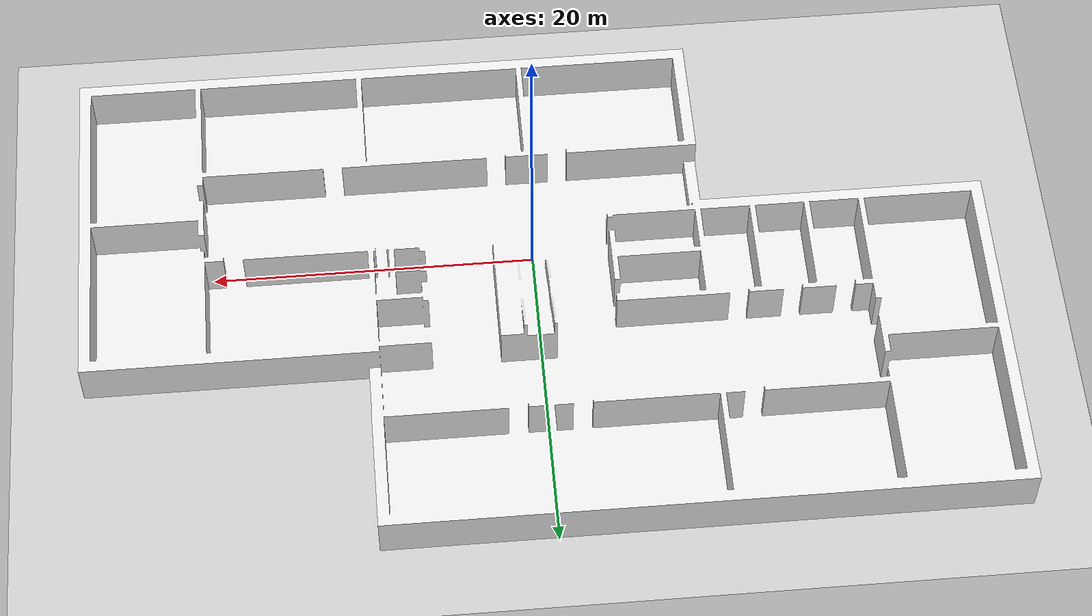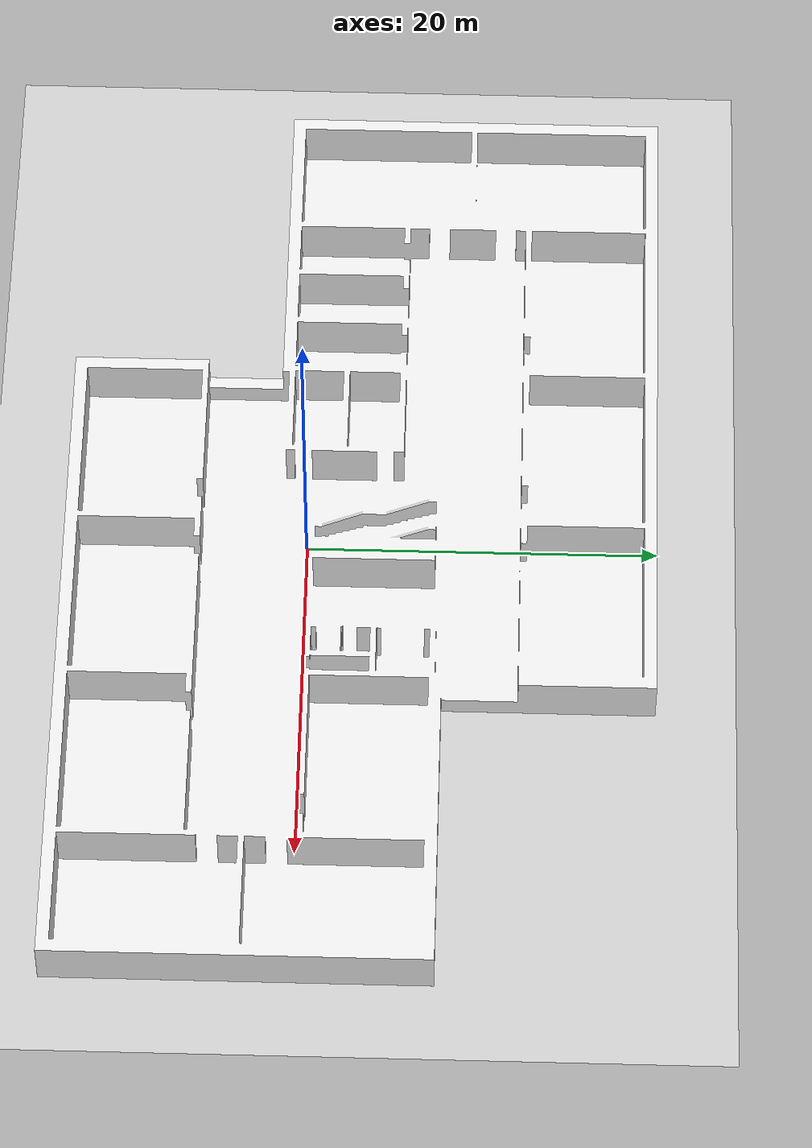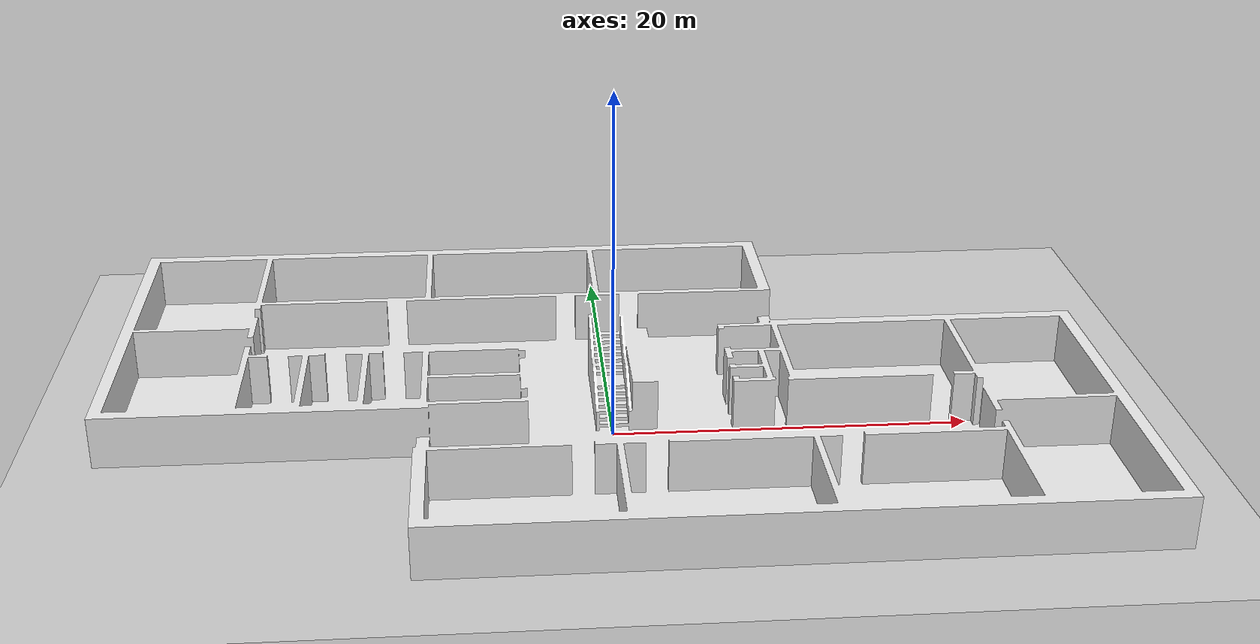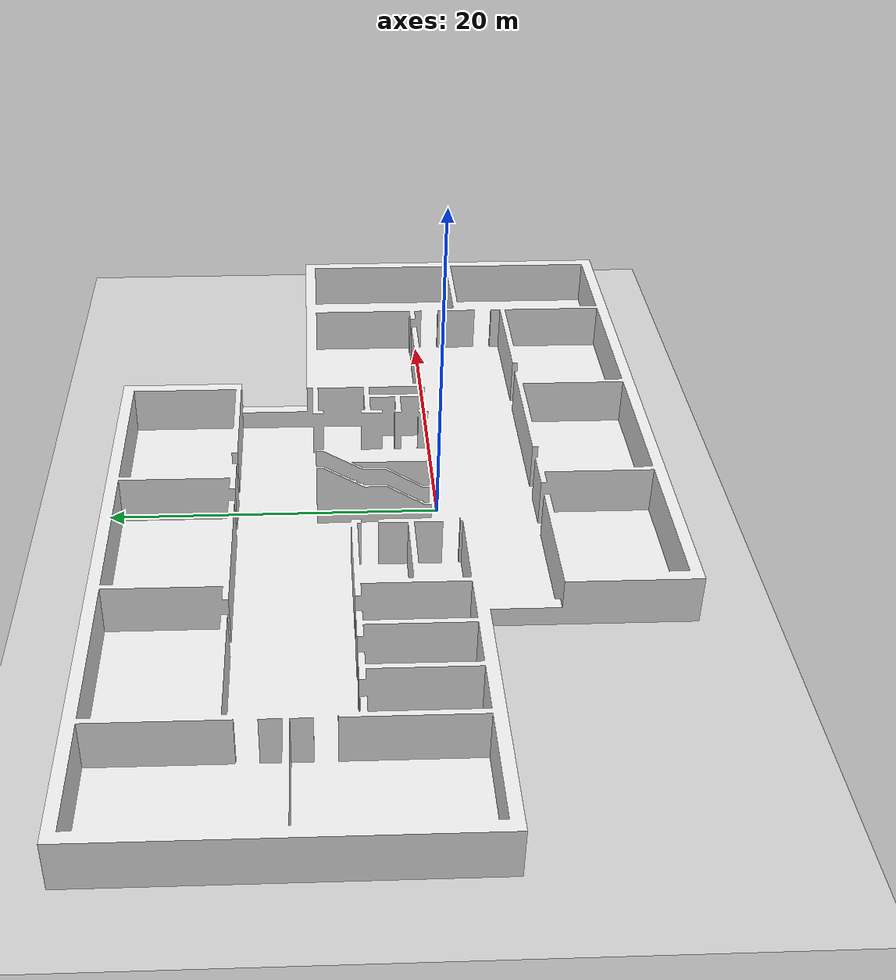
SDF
<sdf version="1.6">
 <world name="default">
  <light name="sun" type="directional">
   <pose>0 0 10 0 -0 0</pose>
   <diffuse>0.8 0.8 0.8 1</diffuse>
   <specular>0.2 0.2 0.2 1</specular>
   <attenuation>
    <range>1000</range>
    <constant>0.9</constant>
    <linear>0.01</linear>
    <quadratic>0.001</quadratic>
   </attenuation>
   <direction>-0.5 0.1 -0.9</direction>
  </light>
  <model name="ground_plane">
   <static>1</static>
   <link name="link">
    <collision name="collision">
     <geometry><plane><normal>0 0 1</normal><size>100 100</size></plane></geometry>
     <surface><friction><ode><mu>100</mu><mu2>50</mu2></ode></friction></surface>
    </collision>
    <visual name="visual">
     <cast_shadows>0</cast_shadows>
     <geometry><plane><normal>0 0 1</normal><size>100 100</size></plane></geometry>
     <material>
      <script><uri>file://media/materials/scripts/gazebo.material</uri><name>Gazebo/Grey</name></script>
     </material>
    </visual>
   </link>
  </model>
  <gravity>0 0 -9.8</gravity>
  <magnetic_field>6e-06 2.3e-05 -4.2e-05</magnetic_field>
  <atmosphere type="adiabatic"/>
  <physics name="default_physics" default="0" type="ode">
   <max_step_size>0.001</max_step_size>
   <real_time_factor>1</real_time_factor>
   <real_time_update_rate>1000</real_time_update_rate>
  </physics>
  <scene><ambient>0.4 0.4 0.4 1</ambient><background>0.7 0.7 0.7 1</background><shadows>1</shadows></scene>
  <spherical_coordinates>
   <surface_model>EARTH_WGS84</surface_model>
   <latitude_deg>0</latitude_deg>
   <longitude_deg>0</longitude_deg>
   <elevation>0</elevation>
   <heading_deg>0</heading_deg>
  </spherical_coordinates>
  <model name="school_4">
   <static>1</static>
   <pose>-0.408649 -2.72548 0 0 -0 0</pose>
   <link name="walls">
    <collision name="collision">
     <geometry><mesh><uri>model://school_4_EMPTY.dae</uri><scale>1 1 1</scale></mesh></geometry>
    </collision>
    <visual name="visual">
     <geometry><mesh><uri>model://school_4_EMPTY.dae</uri><scale>1 1 1</scale></mesh></geometry>
     <material>
      <script><uri>file://media/materials/scripts/gazebo.material</uri><name>Gazebo/White</name></script>
     </material>
     <cast_shadows>0</cast_shadows>
    </visual>
   </link>
  </model>
 </world>
</sdf>
